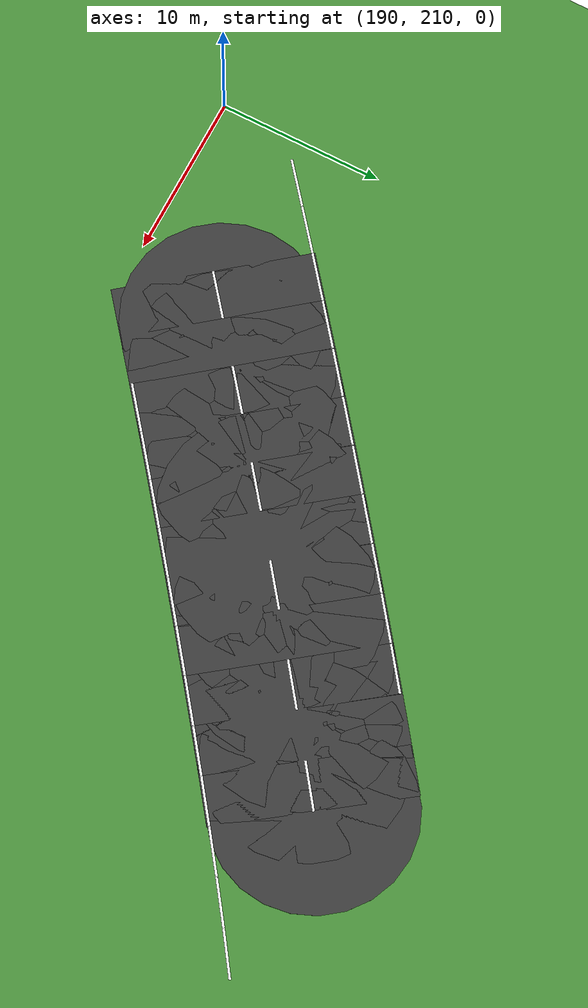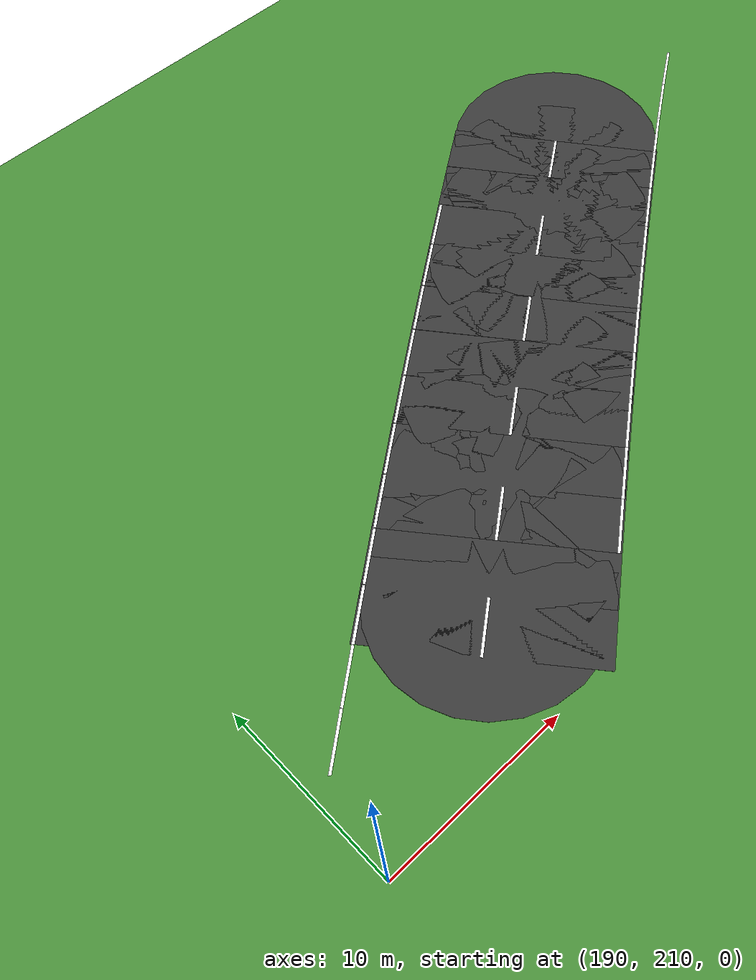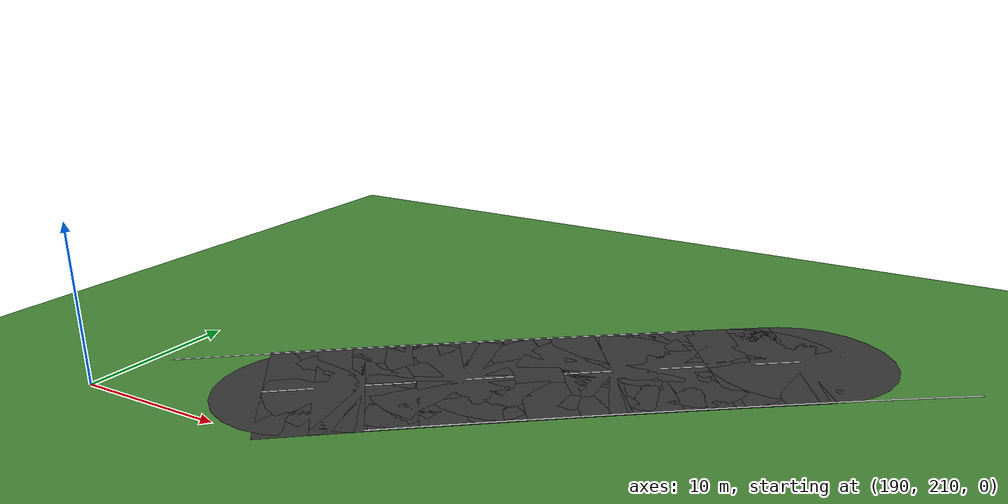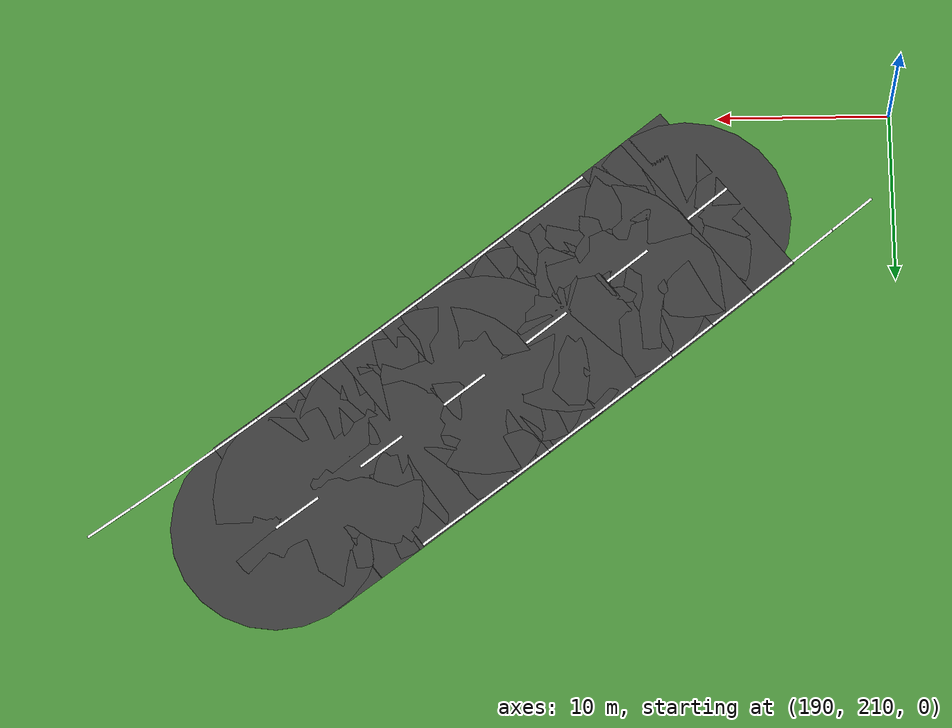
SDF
<sdf version="1.6">
 <world name="sem_silesia_ring_2026">
  <model name="ground_plane">
   <static>true</static>
   <link name="link">
    <collision name="collision">
     <geometry><plane><normal>0 0 1</normal><size>1200 1200</size></plane></geometry>
     <surface><friction><ode><mu>0.6</mu><mu2>0.6</mu2></ode></friction></surface>
    </collision>
    <visual name="visual">
     <geometry><plane><normal>0 0 1</normal><size>1200 1200</size></plane></geometry>
     <material><ambient>0.28 0.55 0.22 1</ambient><diffuse>0.28 0.55 0.22 1</diffuse></material>
    </visual>
   </link>
  </model>
  <model name="wl_L_s231">
   <static>true</static>
   <pose>235.1531 233.9602 0.0070 0 0 -2.5381</pose>
   <link name="link">
    <visual name="v">
     <geometry><box><size>3.0025 0.1500 0.0080</size></box></geometry>
     <material><ambient>0.95 0.95 0.95 1</ambient><diffuse>0.95 0.95 0.95 1</diffuse></material>
    </visual>
   </link>
  </model>
  <model name="wl_L_s232">
   <static>true</static>
   <pose>232.7536 232.2835 0.0070 0 0 -2.5253</pose>
   <link name="link">
    <visual name="v">
     <geometry><box><size>3.0025 0.1500 0.0080</size></box></geometry>
     <material><ambient>0.95 0.95 0.95 1</ambient><diffuse>0.95 0.95 0.95 1</diffuse></material>
    </visual>
   </link>
  </model>
  <model name="wl_L_s233">
   <static>true</static>
   <pose>230.3623 230.5707 0.0070 0 0 -2.5148</pose>
   <link name="link">
    <visual name="v">
     <geometry><box><size>3.0025 0.1500 0.0080</size></box></geometry>
     <material><ambient>0.95 0.95 0.95 1</ambient><diffuse>0.95 0.95 0.95 1</diffuse></material>
    </visual>
   </link>
  </model>
  <model name="road_s234">
   <static>true</static>
   <pose>224.5064 233.5379 0.0030 0 0 -2.5067</pose>
   <link name="link">
    <visual name="v">
     <geometry><box><size>3.0025 12.0000 0.0060</size></box></geometry>
     <material><ambient>0.22 0.22 0.22 1</ambient><diffuse>0.22 0.22 0.22 1</diffuse></material>
    </visual>
    <collision name="c">
     <geometry><box><size>3.0025 12.0000 0.0060</size></box></geometry>
     <surface><friction><ode><mu>0.9</mu><mu2>0.9</mu2></ode></friction></surface>
    </collision>
   </link>
  </model>
  <model name="road_jnt234">
   <static>true</static>
   <pose>225.7152 234.4282 0.0030 0 0 0</pose>
   <link name="link">
    <visual name="v">
     <geometry><cylinder><radius>6.0000</radius><length>0.0060</length></cylinder></geometry>
     <material><ambient>0.22 0.22 0.22 1</ambient><diffuse>0.22 0.22 0.22 1</diffuse></material>
    </visual>
    <collision name="c">
     <geometry><cylinder><radius>6.0000</radius><length>0.0060</length></cylinder></geometry>
     <surface><friction><ode><mu>0.9</mu><mu2>0.9</mu2></ode></friction></surface>
    </collision>
   </link>
  </model>
  <model name="wl_L_s234">
   <static>true</static>
   <pose>227.9758 228.8277 0.0070 0 0 -2.5067</pose>
   <link name="link">
    <visual name="v">
     <geometry><box><size>3.0025 0.1500 0.0080</size></box></geometry>
     <material><ambient>0.95 0.95 0.95 1</ambient><diffuse>0.95 0.95 0.95 1</diffuse></material>
    </visual>
   </link>
  </model>
  <model name="cd_s234">
   <static>true</static>
   <pose>224.5064 233.5379 0.0070 0 0 -2.5067</pose>
   <link name="link">
    <visual name="v">
     <geometry><box><size>3.0025 0.1500 0.0080</size></box></geometry>
     <material><ambient>0.95 0.95 0.95 1</ambient><diffuse>0.95 0.95 0.95 1</diffuse></material>
    </visual>
   </link>
  </model>
  <model name="road_s235">
   <static>true</static>
   <pose>222.0940 231.7504 0.0030 0 0 -2.5010</pose>
   <link name="link">
    <visual name="v">
     <geometry><box><size>3.0025 12.0000 0.0060</size></box></geometry>
     <material><ambient>0.22 0.22 0.22 1</ambient><diffuse>0.22 0.22 0.22 1</diffuse></material>
    </visual>
    <collision name="c">
     <geometry><box><size>3.0025 12.0000 0.0060</size></box></geometry>
     <surface><friction><ode><mu>0.9</mu><mu2>0.9</mu2></ode></friction></surface>
    </collision>
   </link>
  </model>
  <model name="road_jnt235">
   <static>true</static>
   <pose>223.2977 232.6476 0.0030 0 0 0</pose>
   <link name="link">
    <visual name="v">
     <geometry><cylinder><radius>6.0000</radius><length>0.0060</length></cylinder></geometry>
     <material><ambient>0.22 0.22 0.22 1</ambient><diffuse>0.22 0.22 0.22 1</diffuse></material>
    </visual>
    <collision name="c">
     <geometry><cylinder><radius>6.0000</radius><length>0.0060</length></cylinder></geometry>
     <surface><friction><ode><mu>0.9</mu><mu2>0.9</mu2></ode></friction></surface>
    </collision>
   </link>
  </model>
  <model name="wl_L_s235">
   <static>true</static>
   <pose>225.5902 227.0601 0.0070 0 0 -2.5010</pose>
   <link name="link">
    <visual name="v">
     <geometry><box><size>3.0025 0.1500 0.0080</size></box></geometry>
     <material><ambient>0.95 0.95 0.95 1</ambient><diffuse>0.95 0.95 0.95 1</diffuse></material>
    </visual>
   </link>
  </model>
  <model name="road_s236">
   <static>true</static>
   <pose>219.6904 229.9509 0.0030 0 0 -2.4969</pose>
   <link name="link">
    <visual name="v">
     <geometry><box><size>3.0025 12.0000 0.0060</size></box></geometry>
     <material><ambient>0.22 0.22 0.22 1</ambient><diffuse>0.22 0.22 0.22 1</diffuse></material>
    </visual>
    <collision name="c">
     <geometry><box><size>3.0025 12.0000 0.0060</size></box></geometry>
     <surface><friction><ode><mu>0.9</mu><mu2>0.9</mu2></ode></friction></surface>
    </collision>
   </link>
  </model>
  <model name="road_jnt236">
   <static>true</static>
   <pose>220.8903 230.8531 0.0030 0 0 0</pose>
   <link name="link">
    <visual name="v">
     <geometry><cylinder><radius>6.0000</radius><length>0.0060</length></cylinder></geometry>
     <material><ambient>0.22 0.22 0.22 1</ambient><diffuse>0.22 0.22 0.22 1</diffuse></material>
    </visual>
    <collision name="c">
     <geometry><cylinder><radius>6.0000</radius><length>0.0060</length></cylinder></geometry>
     <surface><friction><ode><mu>0.9</mu><mu2>0.9</mu2></ode></friction></surface>
    </collision>
   </link>
  </model>
  <model name="wl_L_s236">
   <static>true</static>
   <pose>223.2060 225.2751 0.0070 0 0 -2.4969</pose>
   <link name="link">
    <visual name="v">
     <geometry><box><size>3.0025 0.1500 0.0080</size></box></geometry>
     <material><ambient>0.95 0.95 0.95 1</ambient><diffuse>0.95 0.95 0.95 1</diffuse></material>
    </visual>
   </link>
  </model>
  <model name="wl_R_s236">
   <static>true</static>
   <pose>216.1748 234.6267 0.0070 0 0 -2.4969</pose>
   <link name="link">
    <visual name="v">
     <geometry><box><size>3.0025 0.1500 0.0080</size></box></geometry>
     <material><ambient>0.95 0.95 0.95 1</ambient><diffuse>0.95 0.95 0.95 1</diffuse></material>
    </visual>
   </link>
  </model>
  <model name="cd_s236">
   <static>true</static>
   <pose>219.6904 229.9509 0.0070 0 0 -2.4969</pose>
   <link name="link">
    <visual name="v">
     <geometry><box><size>3.0025 0.1500 0.0080</size></box></geometry>
     <material><ambient>0.95 0.95 0.95 1</ambient><diffuse>0.95 0.95 0.95 1</diffuse></material>
    </visual>
   </link>
  </model>
  <model name="road_s237">
   <static>true</static>
   <pose>217.2941 228.1418 0.0030 0 0 -2.4929</pose>
   <link name="link">
    <visual name="v">
     <geometry><box><size>3.0025 12.0000 0.0060</size></box></geometry>
     <material><ambient>0.22 0.22 0.22 1</ambient><diffuse>0.22 0.22 0.22 1</diffuse></material>
    </visual>
    <collision name="c">
     <geometry><box><size>3.0025 12.0000 0.0060</size></box></geometry>
     <surface><friction><ode><mu>0.9</mu><mu2>0.9</mu2></ode></friction></surface>
    </collision>
   </link>
  </model>
  <model name="road_jnt237">
   <static>true</static>
   <pose>218.4905 229.0487 0.0030 0 0 0</pose>
   <link name="link">
    <visual name="v">
     <geometry><cylinder><radius>6.0000</radius><length>0.0060</length></cylinder></geometry>
     <material><ambient>0.22 0.22 0.22 1</ambient><diffuse>0.22 0.22 0.22 1</diffuse></material>
    </visual>
    <collision name="c">
     <geometry><cylinder><radius>6.0000</radius><length>0.0060</length></cylinder></geometry>
     <surface><friction><ode><mu>0.9</mu><mu2>0.9</mu2></ode></friction></surface>
    </collision>
   </link>
  </model>
  <model name="wl_L_s237">
   <static>true</static>
   <pose>220.8283 223.4800 0.0070 0 0 -2.4929</pose>
   <link name="link">
    <visual name="v">
     <geometry><box><size>3.0025 0.1500 0.0080</size></box></geometry>
     <material><ambient>0.95 0.95 0.95 1</ambient><diffuse>0.95 0.95 0.95 1</diffuse></material>
    </visual>
   </link>
  </model>
  <model name="wl_R_s237">
   <static>true</static>
   <pose>213.7600 232.8036 0.0070 0 0 -2.4929</pose>
   <link name="link">
    <visual name="v">
     <geometry><box><size>3.0025 0.1500 0.0080</size></box></geometry>
     <material><ambient>0.95 0.95 0.95 1</ambient><diffuse>0.95 0.95 0.95 1</diffuse></material>
    </visual>
   </link>
  </model>
  <model name="road_s238">
   <static>true</static>
   <pose>214.9051 226.3231 0.0030 0 0 -2.4890</pose>
   <link name="link">
    <visual name="v">
     <geometry><box><size>3.0025 12.0000 0.0060</size></box></geometry>
     <material><ambient>0.22 0.22 0.22 1</ambient><diffuse>0.22 0.22 0.22 1</diffuse></material>
    </visual>
    <collision name="c">
     <geometry><box><size>3.0025 12.0000 0.0060</size></box></geometry>
     <surface><friction><ode><mu>0.9</mu><mu2>0.9</mu2></ode></friction></surface>
    </collision>
   </link>
  </model>
  <model name="road_jnt238">
   <static>true</static>
   <pose>216.0978 227.2348 0.0030 0 0 0</pose>
   <link name="link">
    <visual name="v">
     <geometry><cylinder><radius>6.0000</radius><length>0.0060</length></cylinder></geometry>
     <material><ambient>0.22 0.22 0.22 1</ambient><diffuse>0.22 0.22 0.22 1</diffuse></material>
    </visual>
    <collision name="c">
     <geometry><cylinder><radius>6.0000</radius><length>0.0060</length></cylinder></geometry>
     <surface><friction><ode><mu>0.9</mu><mu2>0.9</mu2></ode></friction></surface>
    </collision>
   </link>
  </model>
  <model name="wl_L_s238">
   <static>true</static>
   <pose>218.4577 221.6754 0.0070 0 0 -2.4890</pose>
   <link name="link">
    <visual name="v">
     <geometry><box><size>3.0025 0.1500 0.0080</size></box></geometry>
     <material><ambient>0.95 0.95 0.95 1</ambient><diffuse>0.95 0.95 0.95 1</diffuse></material>
    </visual>
   </link>
  </model>
  <model name="wl_R_s238">
   <static>true</static>
   <pose>211.3525 230.9709 0.0070 0 0 -2.4890</pose>
   <link name="link">
    <visual name="v">
     <geometry><box><size>3.0025 0.1500 0.0080</size></box></geometry>
     <material><ambient>0.95 0.95 0.95 1</ambient><diffuse>0.95 0.95 0.95 1</diffuse></material>
    </visual>
   </link>
  </model>
  <model name="cd_s238">
   <static>true</static>
   <pose>214.9051 226.3231 0.0070 0 0 -2.4890</pose>
   <link name="link">
    <visual name="v">
     <geometry><box><size>3.0025 0.1500 0.0080</size></box></geometry>
     <material><ambient>0.95 0.95 0.95 1</ambient><diffuse>0.95 0.95 0.95 1</diffuse></material>
    </visual>
   </link>
  </model>
  <model name="road_s239">
   <static>true</static>
   <pose>212.5232 224.4950 0.0030 0 0 -2.4850</pose>
   <link name="link">
    <visual name="v">
     <geometry><box><size>3.0025 12.0000 0.0060</size></box></geometry>
     <material><ambient>0.22 0.22 0.22 1</ambient><diffuse>0.22 0.22 0.22 1</diffuse></material>
    </visual>
    <collision name="c">
     <geometry><box><size>3.0025 12.0000 0.0060</size></box></geometry>
     <surface><friction><ode><mu>0.9</mu><mu2>0.9</mu2></ode></friction></surface>
    </collision>
   </link>
  </model>
  <model name="road_jnt239">
   <static>true</static>
   <pose>213.7123 225.4114 0.0030 0 0 0</pose>
   <link name="link">
    <visual name="v">
     <geometry><cylinder><radius>6.0000</radius><length>0.0060</length></cylinder></geometry>
     <material><ambient>0.22 0.22 0.22 1</ambient><diffuse>0.22 0.22 0.22 1</diffuse></material>
    </visual>
    <collision name="c">
     <geometry><cylinder><radius>6.0000</radius><length>0.0060</length></cylinder></geometry>
     <surface><friction><ode><mu>0.9</mu><mu2>0.9</mu2></ode></friction></surface>
    </collision>
   </link>
  </model>
  <model name="wl_L_s239">
   <static>true</static>
   <pose>216.0941 219.8613 0.0070 0 0 -2.4850</pose>
   <link name="link">
    <visual name="v">
     <geometry><box><size>3.0025 0.1500 0.0080</size></box></geometry>
     <material><ambient>0.95 0.95 0.95 1</ambient><diffuse>0.95 0.95 0.95 1</diffuse></material>
    </visual>
   </link>
  </model>
  <model name="wl_R_s239">
   <static>true</static>
   <pose>208.9523 229.1287 0.0070 0 0 -2.4850</pose>
   <link name="link">
    <visual name="v">
     <geometry><box><size>3.0025 0.1500 0.0080</size></box></geometry>
     <material><ambient>0.95 0.95 0.95 1</ambient><diffuse>0.95 0.95 0.95 1</diffuse></material>
    </visual>
   </link>
  </model>
  <model name="road_s240">
   <static>true</static>
   <pose>210.1486 222.6576 0.0030 0 0 -2.4811</pose>
   <link name="link">
    <visual name="v">
     <geometry><box><size>3.0025 12.0000 0.0060</size></box></geometry>
     <material><ambient>0.22 0.22 0.22 1</ambient><diffuse>0.22 0.22 0.22 1</diffuse></material>
    </visual>
    <collision name="c">
     <geometry><box><size>3.0025 12.0000 0.0060</size></box></geometry>
     <surface><friction><ode><mu>0.9</mu><mu2>0.9</mu2></ode></friction></surface>
    </collision>
   </link>
  </model>
  <model name="road_jnt240">
   <static>true</static>
   <pose>211.3341 223.5786 0.0030 0 0 0</pose>
   <link name="link">
    <visual name="v">
     <geometry><cylinder><radius>6.0000</radius><length>0.0060</length></cylinder></geometry>
     <material><ambient>0.22 0.22 0.22 1</ambient><diffuse>0.22 0.22 0.22 1</diffuse></material>
    </visual>
    <collision name="c">
     <geometry><cylinder><radius>6.0000</radius><length>0.0060</length></cylinder></geometry>
     <surface><friction><ode><mu>0.9</mu><mu2>0.9</mu2></ode></friction></surface>
    </collision>
   </link>
  </model>
  <model name="wl_L_s240">
   <static>true</static>
   <pose>213.7377 218.0380 0.0070 0 0 -2.4811</pose>
   <link name="link">
    <visual name="v">
     <geometry><box><size>3.0025 0.1500 0.0080</size></box></geometry>
     <material><ambient>0.95 0.95 0.95 1</ambient><diffuse>0.95 0.95 0.95 1</diffuse></material>
    </visual>
   </link>
  </model>
  <model name="wl_R_s240">
   <static>true</static>
   <pose>206.5595 227.2772 0.0070 0 0 -2.4811</pose>
   <link name="link">
    <visual name="v">
     <geometry><box><size>3.0025 0.1500 0.0080</size></box></geometry>
     <material><ambient>0.95 0.95 0.95 1</ambient><diffuse>0.95 0.95 0.95 1</diffuse></material>
    </visual>
   </link>
  </model>
  <model name="cd_s240">
   <static>true</static>
   <pose>210.1486 222.6576 0.0070 0 0 -2.4811</pose>
   <link name="link">
    <visual name="v">
     <geometry><box><size>3.0025 0.1500 0.0080</size></box></geometry>
     <material><ambient>0.95 0.95 0.95 1</ambient><diffuse>0.95 0.95 0.95 1</diffuse></material>
    </visual>
   </link>
  </model>
  <model name="road_s241">
   <static>true</static>
   <pose>207.7811 220.8108 0.0030 0 0 -2.4772</pose>
   <link name="link">
    <visual name="v">
     <geometry><box><size>3.0025 12.0000 0.0060</size></box></geometry>
     <material><ambient>0.22 0.22 0.22 1</ambient><diffuse>0.22 0.22 0.22 1</diffuse></material>
    </visual>
    <collision name="c">
     <geometry><box><size>3.0025 12.0000 0.0060</size></box></geometry>
     <surface><friction><ode><mu>0.9</mu><mu2>0.9</mu2></ode></friction></surface>
    </collision>
   </link>
  </model>
  <model name="road_jnt241">
   <static>true</static>
   <pose>208.9630 221.7365 0.0030 0 0 0</pose>
   <link name="link">
    <visual name="v">
     <geometry><cylinder><radius>6.0000</radius><length>0.0060</length></cylinder></geometry>
     <material><ambient>0.22 0.22 0.22 1</ambient><diffuse>0.22 0.22 0.22 1</diffuse></material>
    </visual>
    <collision name="c">
     <geometry><cylinder><radius>6.0000</radius><length>0.0060</length></cylinder></geometry>
     <surface><friction><ode><mu>0.9</mu><mu2>0.9</mu2></ode></friction></surface>
    </collision>
   </link>
  </model>
  <model name="wl_L_s241">
   <static>true</static>
   <pose>211.3883 216.2053 0.0070 0 0 -2.4772</pose>
   <link name="link">
    <visual name="v">
     <geometry><box><size>3.0025 0.1500 0.0080</size></box></geometry>
     <material><ambient>0.95 0.95 0.95 1</ambient><diffuse>0.95 0.95 0.95 1</diffuse></material>
    </visual>
   </link>
  </model>
  <model name="wl_R_s241">
   <static>true</static>
   <pose>204.1740 225.4164 0.0070 0 0 -2.4772</pose>
   <link name="link">
    <visual name="v">
     <geometry><box><size>3.0025 0.1500 0.0080</size></box></geometry>
     <material><ambient>0.95 0.95 0.95 1</ambient><diffuse>0.95 0.95 0.95 1</diffuse></material>
    </visual>
   </link>
  </model>
  <model name="road_s242">
   <static>true</static>
   <pose>205.4209 218.9549 0.0030 0 0 -2.4733</pose>
   <link name="link">
    <visual name="v">
     <geometry><box><size>3.0025 12.0000 0.0060</size></box></geometry>
     <material><ambient>0.22 0.22 0.22 1</ambient><diffuse>0.22 0.22 0.22 1</diffuse></material>
    </visual>
    <collision name="c">
     <geometry><box><size>3.0025 12.0000 0.0060</size></box></geometry>
     <surface><friction><ode><mu>0.9</mu><mu2>0.9</mu2></ode></friction></surface>
    </collision>
   </link>
  </model>
  <model name="road_jnt242">
   <static>true</static>
   <pose>206.5992 219.8851 0.0030 0 0 0</pose>
   <link name="link">
    <visual name="v">
     <geometry><cylinder><radius>6.0000</radius><length>0.0060</length></cylinder></geometry>
     <material><ambient>0.22 0.22 0.22 1</ambient><diffuse>0.22 0.22 0.22 1</diffuse></material>
    </visual>
    <collision name="c">
     <geometry><cylinder><radius>6.0000</radius><length>0.0060</length></cylinder></geometry>
     <surface><friction><ode><mu>0.9</mu><mu2>0.9</mu2></ode></friction></surface>
    </collision>
   </link>
  </model>
  <model name="wl_L_s242">
   <static>true</static>
   <pose>209.0460 214.3634 0.0070 0 0 -2.4733</pose>
   <link name="link">
    <visual name="v">
     <geometry><box><size>3.0025 0.1500 0.0080</size></box></geometry>
     <material><ambient>0.95 0.95 0.95 1</ambient><diffuse>0.95 0.95 0.95 1</diffuse></material>
    </visual>
   </link>
  </model>
  <model name="wl_R_s242">
   <static>true</static>
   <pose>201.7959 223.5463 0.0070 0 0 -2.4733</pose>
   <link name="link">
    <visual name="v">
     <geometry><box><size>3.0025 0.1500 0.0080</size></box></geometry>
     <material><ambient>0.95 0.95 0.95 1</ambient><diffuse>0.95 0.95 0.95 1</diffuse></material>
    </visual>
   </link>
  </model>
  <model name="cd_s242">
   <static>true</static>
   <pose>205.4209 218.9549 0.0070 0 0 -2.4733</pose>
   <link name="link">
    <visual name="v">
     <geometry><box><size>3.0025 0.1500 0.0080</size></box></geometry>
     <material><ambient>0.95 0.95 0.95 1</ambient><diffuse>0.95 0.95 0.95 1</diffuse></material>
    </visual>
   </link>
  </model>
  <model name="road_s243">
   <static>true</static>
   <pose>203.0680 217.0897 0.0030 0 0 -2.4694</pose>
   <link name="link">
    <visual name="v">
     <geometry><box><size>3.0025 12.0000 0.0060</size></box></geometry>
     <material><ambient>0.22 0.22 0.22 1</ambient><diffuse>0.22 0.22 0.22 1</diffuse></material>
    </visual>
    <collision name="c">
     <geometry><box><size>3.0025 12.0000 0.0060</size></box></geometry>
     <surface><friction><ode><mu>0.9</mu><mu2>0.9</mu2></ode></friction></surface>
    </collision>
   </link>
  </model>
  <model name="road_jnt243">
   <static>true</static>
   <pose>204.2426 218.0246 0.0030 0 0 0</pose>
   <link name="link">
    <visual name="v">
     <geometry><cylinder><radius>6.0000</radius><length>0.0060</length></cylinder></geometry>
     <material><ambient>0.22 0.22 0.22 1</ambient><diffuse>0.22 0.22 0.22 1</diffuse></material>
    </visual>
    <collision name="c">
     <geometry><cylinder><radius>6.0000</radius><length>0.0060</length></cylinder></geometry>
     <surface><friction><ode><mu>0.9</mu><mu2>0.9</mu2></ode></friction></surface>
    </collision>
   </link>
  </model>
  <model name="wl_R_s243">
   <static>true</static>
   <pose>199.4252 221.6671 0.0070 0 0 -2.4694</pose>
   <link name="link">
    <visual name="v">
     <geometry><box><size>3.0025 0.1500 0.0080</size></box></geometry>
     <material><ambient>0.95 0.95 0.95 1</ambient><diffuse>0.95 0.95 0.95 1</diffuse></material>
    </visual>
   </link>
  </model>
  <model name="road_s244">
   <static>true</static>
   <pose>200.7222 215.2155 0.0030 0 0 -2.4656</pose>
   <link name="link">
    <visual name="v">
     <geometry><box><size>3.0025 12.0000 0.0060</size></box></geometry>
     <material><ambient>0.22 0.22 0.22 1</ambient><diffuse>0.22 0.22 0.22 1</diffuse></material>
    </visual>
    <collision name="c">
     <geometry><box><size>3.0025 12.0000 0.0060</size></box></geometry>
     <surface><friction><ode><mu>0.9</mu><mu2>0.9</mu2></ode></friction></surface>
    </collision>
   </link>
  </model>
  <model name="road_jnt244">
   <static>true</static>
   <pose>201.8933 216.1549 0.0030 0 0 0</pose>
   <link name="link">
    <visual name="v">
     <geometry><cylinder><radius>6.0000</radius><length>0.0060</length></cylinder></geometry>
     <material><ambient>0.22 0.22 0.22 1</ambient><diffuse>0.22 0.22 0.22 1</diffuse></material>
    </visual>
    <collision name="c">
     <geometry><cylinder><radius>6.0000</radius><length>0.0060</length></cylinder></geometry>
     <surface><friction><ode><mu>0.9</mu><mu2>0.9</mu2></ode></friction></surface>
    </collision>
   </link>
  </model>
  <model name="wl_R_s244">
   <static>true</static>
   <pose>197.0618 219.7789 0.0070 0 0 -2.4656</pose>
   <link name="link">
    <visual name="v">
     <geometry><box><size>3.0025 0.1500 0.0080</size></box></geometry>
     <material><ambient>0.95 0.95 0.95 1</ambient><diffuse>0.95 0.95 0.95 1</diffuse></material>
    </visual>
   </link>
  </model>
  <model name="cd_s244">
   <static>true</static>
   <pose>200.7222 215.2155 0.0070 0 0 -2.4656</pose>
   <link name="link">
    <visual name="v">
     <geometry><box><size>3.0025 0.1500 0.0080</size></box></geometry>
     <material><ambient>0.95 0.95 0.95 1</ambient><diffuse>0.95 0.95 0.95 1</diffuse></material>
    </visual>
   </link>
  </model>
  <model name="wl_R_s245">
   <static>true</static>
   <pose>194.7058 217.8816 0.0070 0 0 -2.4617</pose>
   <link name="link">
    <visual name="v">
     <geometry><box><size>3.0025 0.1500 0.0080</size></box></geometry>
     <material><ambient>0.95 0.95 0.95 1</ambient><diffuse>0.95 0.95 0.95 1</diffuse></material>
    </visual>
   </link>
  </model>
  <model name="wl_R_s246">
   <static>true</static>
   <pose>192.3572 215.9755 0.0070 0 0 -2.4579</pose>
   <link name="link">
    <visual name="v">
     <geometry><box><size>3.0025 0.1500 0.0080</size></box></geometry>
     <material><ambient>0.95 0.95 0.95 1</ambient><diffuse>0.95 0.95 0.95 1</diffuse></material>
    </visual>
   </link>
  </model>
 </world>
</sdf>
